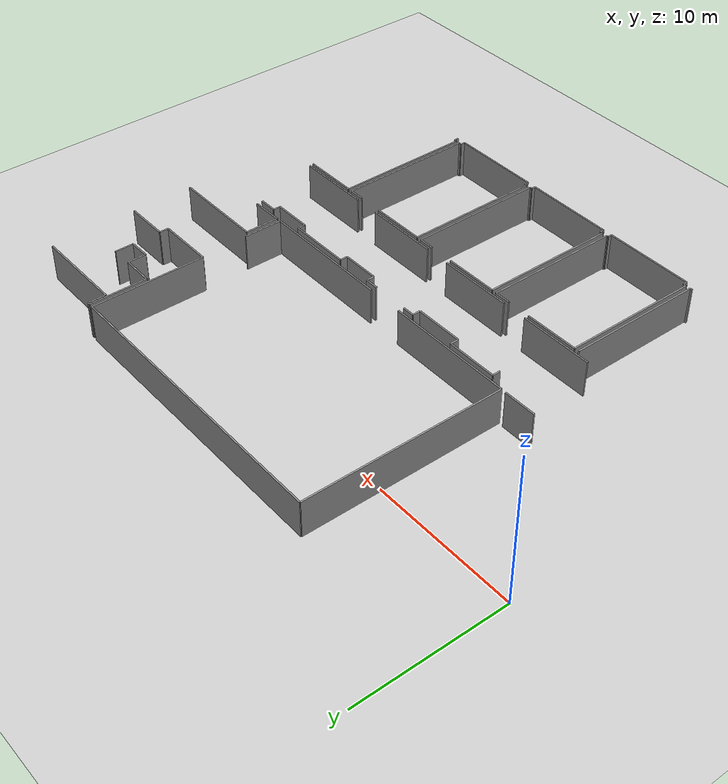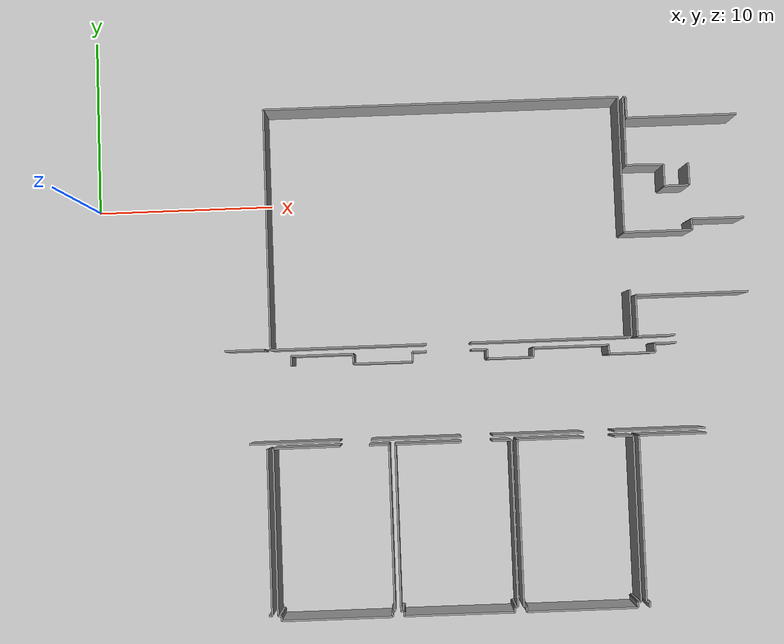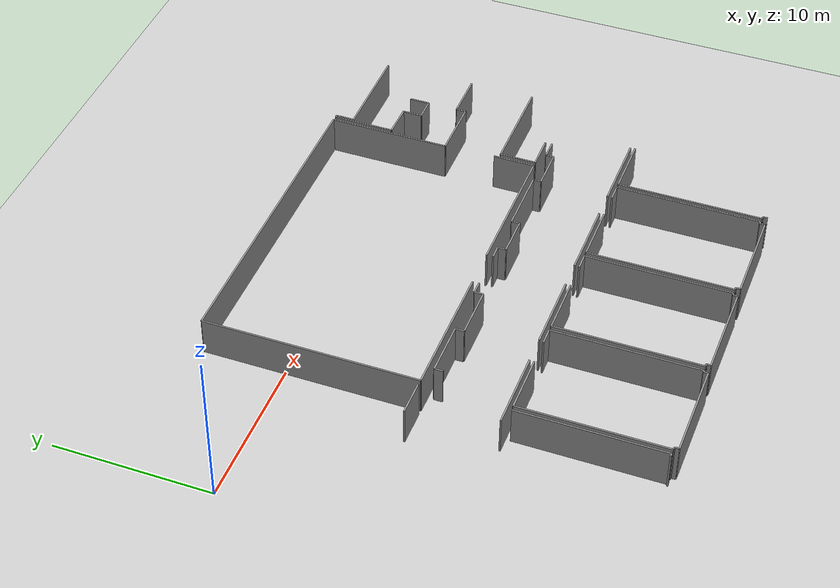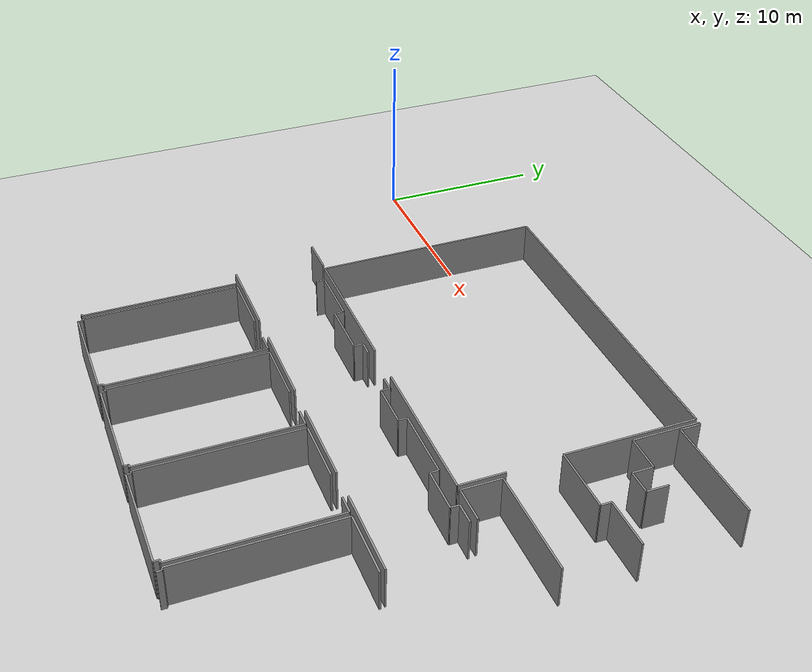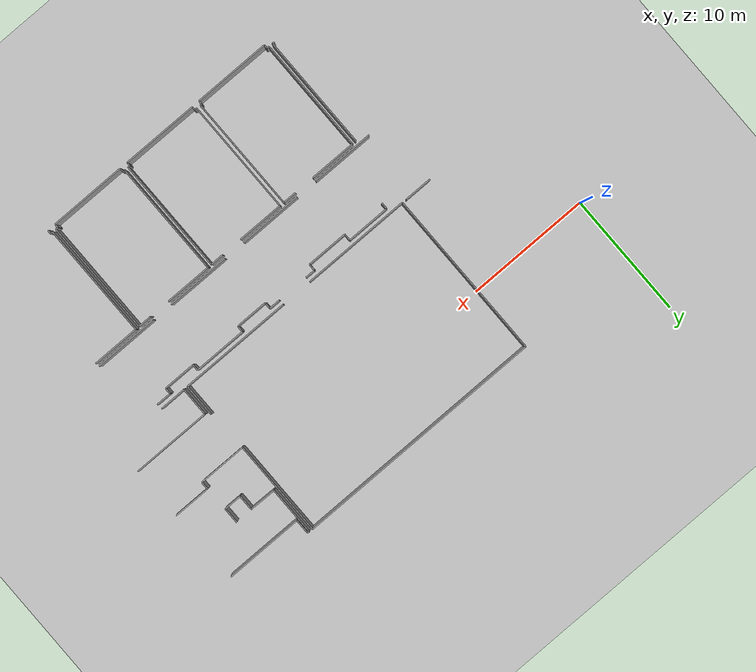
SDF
<sdf version="1.6">
 <world name="default">
  <model name="ground_plane">
   <static>1</static>
   <link name="link">
    <collision name="collision">
     <geometry><plane><normal>0 0 1</normal><size>100 100</size></plane></geometry>
     <surface><friction><ode><mu>100</mu><mu2>50</mu2></ode></friction></surface>
    </collision>
    <visual name="visual">
     <cast_shadows>0</cast_shadows>
     <geometry><plane><normal>0 0 1</normal><size>100 100</size></plane></geometry>
     <material>
      <script><uri>file://media/materials/scripts/gazebo.material</uri><name>Gazebo/Grey</name></script>
     </material>
    </visual>
   </link>
  </model>
  <model name="0510032194_A_40_1_202">
   <static>1</static>
   <link name="Wall_149">
    <collision name="Wall_149_Collision">
     <geometry><box><size>9.18513155639 0.1 2.5</size></box></geometry>
     <pose>4.59256577819 0 1.25 0 0 0</pose>
    </collision>
    <visual name="Wall_149_Visual">
     <pose>4.59256577819 0 1.25 0 0 0</pose>
     <geometry><box><size>9.18513155639 0.1 2.5</size></box></geometry>
     <material>
      <script><uri>file://media/materials/scripts/gazebo.material</uri><name>Gazebo/Grey</name></script>
      <ambient>1 1 1 1</ambient>
     </material>
    </visual>
    <pose>70.4711642883 -37.4038015763 0 0 0 -1.57079632679</pose>
   </link>
   <link name="Wall_150">
    <collision name="Wall_150_Collision">
     <geometry><box><size>0.168930719353 0.1 2.5</size></box></geometry>
     <pose>0.0844653596764 0 1.25 0 0 0</pose>
    </collision>
    <visual name="Wall_150_Visual">
     <pose>0.0844653596764 0 1.25 0 0 0</pose>
     <geometry><box><size>0.168930719353 0.1 2.5</size></box></geometry>
     <material>
      <script><uri>file://media/materials/scripts/gazebo.material</uri><name>Gazebo/Grey</name></script>
      <ambient>1 1 1 1</ambient>
     </material>
    </visual>
    <pose>70.4711642883 -46.5889331326 0 0 0 3.14159265359</pose>
   </link>
   <link name="Wall_153">
    <collision name="Wall_153_Collision">
     <geometry><box><size>9.21053467208 0.1 2.5</size></box></geometry>
     <pose>4.60526733604 0 1.25 0 0 0</pose>
    </collision>
    <visual name="Wall_153_Visual">
     <pose>4.60526733604 0 1.25 0 0 0</pose>
     <geometry><box><size>9.21053467208 0.1 2.5</size></box></geometry>
     <material>
      <script><uri>file://media/materials/scripts/gazebo.material</uri><name>Gazebo/Grey</name></script>
      <ambient>1 1 1 1</ambient>
     </material>
    </visual>
    <pose>70.7968322315 -46.5950298804 0 0 0 1.57079632679</pose>
   </link>
   <link name="Wall_154">
    <collision name="Wall_154_Collision">
     <geometry><box><size>3.73603622484 0.1 2.5</size></box></geometry>
     <pose>1.86801811242 0 1.25 0 0 0</pose>
    </collision>
    <visual name="Wall_154_Visual">
     <pose>1.86801811242 0 1.25 0 0 0</pose>
     <geometry><box><size>3.73603622484 0.1 2.5</size></box></geometry>
     <material>
      <script><uri>file://media/materials/scripts/gazebo.material</uri><name>Gazebo/Grey</name></script>
      <ambient>1 1 1 1</ambient>
     </material>
    </visual>
    <pose>70.7968322315 -37.3844952083 0 0 0 0.0</pose>
   </link>
   <link name="Wall_155">
    <collision name="Wall_155_Collision">
     <geometry><box><size>1.10452747029 0.1 2.5</size></box></geometry>
     <pose>0.552263735147 0 1.25 0 0 0</pose>
    </collision>
    <visual name="Wall_155_Visual">
     <pose>0.552263735147 0 1.25 0 0 0</pose>
     <geometry><box><size>1.10452747029 0.1 2.5</size></box></geometry>
     <material>
      <script><uri>file://media/materials/scripts/gazebo.material</uri><name>Gazebo/Grey</name></script>
      <ambient>1 1 1 1</ambient>
     </material>
    </visual>
    <pose>76.1751798858 -37.3844952083 0 0 0 0.0</pose>
   </link>
   <link name="Wall_156">
    <collision name="Wall_156_Collision">
     <geometry><box><size>9.22069591835 0.1 2.5</size></box></geometry>
     <pose>4.61034795918 0 1.25 0 0 0</pose>
    </collision>
    <visual name="Wall_156_Visual">
     <pose>4.61034795918 0 1.25 0 0 0</pose>
     <geometry><box><size>9.22069591835 0.1 2.5</size></box></geometry>
     <material>
      <script><uri>file://media/materials/scripts/gazebo.material</uri><name>Gazebo/Grey</name></script>
      <ambient>1 1 1 1</ambient>
     </material>
    </visual>
    <pose>77.2797073561 -37.3844952083 0 0 0 -1.57079632679</pose>
   </link>
   <link name="Wall_157">
    <collision name="Wall_157_Collision">
     <geometry><box><size>0.125872438255 0.1 2.5</size></box></geometry>
     <pose>0.0629362191273 0 1.25 0 0 0</pose>
    </collision>
    <visual name="Wall_157_Visual">
     <pose>0.0629362191273 0 1.25 0 0 0</pose>
     <geometry><box><size>0.125872438255 0.1 2.5</size></box></geometry>
     <material>
      <script><uri>file://media/materials/scripts/gazebo.material</uri><name>Gazebo/Grey</name></script>
      <ambient>1 1 1 1</ambient>
     </material>
    </visual>
    <pose>77.2797073561 -46.6051911267 0 0 0 3.14159265359</pose>
   </link>
   <link name="Wall_158">
    <collision name="Wall_158_Collision">
     <geometry><box><size>0.28553102038 0.1 2.5</size></box></geometry>
     <pose>0.14276551019 0 1.25 0 0 0</pose>
    </collision>
    <visual name="Wall_158_Visual">
     <pose>0.14276551019 0 1.25 0 0 0</pose>
     <geometry><box><size>0.28553102038 0.1 2.5</size></box></geometry>
     <material>
      <script><uri>file://media/materials/scripts/gazebo.material</uri><name>Gazebo/Grey</name></script>
      <ambient>1 1 1 1</ambient>
     </material>
    </visual>
    <pose>77.1538349179 -46.6051911267 0 0 0 -1.57079632679</pose>
   </link>
   <link name="Wall_159">
    <collision name="Wall_159_Collision">
     <geometry><box><size>6.17308412877 0.1 2.5</size></box></geometry>
     <pose>3.08654206438 0 1.25 0 0 0</pose>
    </collision>
    <visual name="Wall_159_Visual">
     <pose>3.08654206438 0 1.25 0 0 0</pose>
     <geometry><box><size>6.17308412877 0.1 2.5</size></box></geometry>
     <material>
      <script><uri>file://media/materials/scripts/gazebo.material</uri><name>Gazebo/Grey</name></script>
      <ambient>1 1 1 1</ambient>
     </material>
    </visual>
    <pose>77.1538349179 -46.8907221471 0 0 0 3.14159265359</pose>
   </link>
   <link name="Wall_160">
    <collision name="Wall_160_Collision">
     <geometry><box><size>0.274988727367 0.1 2.5</size></box></geometry>
     <pose>0.137494363684 0 1.25 0 0 0</pose>
    </collision>
    <visual name="Wall_160_Visual">
     <pose>0.137494363684 0 1.25 0 0 0</pose>
     <geometry><box><size>0.274988727367 0.1 2.5</size></box></geometry>
     <material>
      <script><uri>file://media/materials/scripts/gazebo.material</uri><name>Gazebo/Grey</name></script>
      <ambient>1 1 1 1</ambient>
     </material>
    </visual>
    <pose>70.9807507891 -46.8907221471 0 0 0 1.57079632679</pose>
   </link>
   <link name="Wall_161">
    <collision name="Wall_161_Collision">
     <geometry><box><size>0.185080178228 0.1 2.5</size></box></geometry>
     <pose>0.0925400891139 0 1.25 0 0 0</pose>
    </collision>
    <visual name="Wall_161_Visual">
     <pose>0.0925400891139 0 1.25 0 0 0</pose>
     <geometry><box><size>0.185080178228 0.1 2.5</size></box></geometry>
     <material>
      <script><uri>file://media/materials/scripts/gazebo.material</uri><name>Gazebo/Grey</name></script>
      <ambient>1 1 1 1</ambient>
     </material>
    </visual>
    <pose>70.9807507891 -46.6157334197 0 0 0 3.02949549404</pose>
   </link>
   <link name="Wall_162">
    <collision name="Wall_162_Collision">
     <geometry><box><size>0.267240777081 0.1 2.5</size></box></geometry>
     <pose>0.133620388541 0 1.25 0 0 0</pose>
    </collision>
    <visual name="Wall_162_Visual">
     <pose>0.133620388541 0 1.25 0 0 0</pose>
     <geometry><box><size>0.267240777081 0.1 2.5</size></box></geometry>
     <material>
      <script><uri>file://media/materials/scripts/gazebo.material</uri><name>Gazebo/Grey</name></script>
      <ambient>1 1 1 1</ambient>
     </material>
    </visual>
    <pose>77.8036466173 -46.876877449 0 0 0 1.57079632679</pose>
   </link>
   <link name="Wall_163">
    <collision name="Wall_163_Collision">
     <geometry><box><size>0.175281498276 0.1 2.5</size></box></geometry>
     <pose>0.0876407491379 0 1.25 0 0 0</pose>
    </collision>
    <visual name="Wall_163_Visual">
     <pose>0.0876407491379 0 1.25 0 0 0</pose>
     <geometry><box><size>0.175281498276 0.1 2.5</size></box></geometry>
     <material>
      <script><uri>file://media/materials/scripts/gazebo.material</uri><name>Gazebo/Grey</name></script>
      <ambient>1 1 1 1</ambient>
     </material>
    </visual>
    <pose>77.8036466173 -46.6096366719 0 0 0 3.14159265359</pose>
   </link>
   <link name="Wall_164">
    <collision name="Wall_164_Collision">
     <geometry><box><size>9.21459917059 0.1 2.5</size></box></geometry>
     <pose>4.60729958529 0 1.25 0 0 0</pose>
    </collision>
    <visual name="Wall_164_Visual">
     <pose>4.60729958529 0 1.25 0 0 0</pose>
     <geometry><box><size>9.21459917059 0.1 2.5</size></box></geometry>
     <material>
      <script><uri>file://media/materials/scripts/gazebo.material</uri><name>Gazebo/Grey</name></script>
      <ambient>1 1 1 1</ambient>
     </material>
    </visual>
    <pose>77.628365119 -46.6096366719 0 0 0 1.57079632679</pose>
   </link>
   <link name="Wall_165">
    <collision name="Wall_165_Collision">
     <geometry><box><size>3.71965121522 0.1 2.5</size></box></geometry>
     <pose>1.85982560761 0 1.25 0 0 0</pose>
    </collision>
    <visual name="Wall_165_Visual">
     <pose>1.85982560761 0 1.25 0 0 0</pose>
     <geometry><box><size>3.71965121522 0.1 2.5</size></box></geometry>
     <material>
      <script><uri>file://media/materials/scripts/gazebo.material</uri><name>Gazebo/Grey</name></script>
      <ambient>1 1 1 1</ambient>
     </material>
    </visual>
    <pose>77.628365119 -37.3950375013 0 0 0 0.0</pose>
   </link>
   <link name="Wall_166">
    <collision name="Wall_166_Collision">
     <geometry><box><size>1.05867484647 0.1 2.5</size></box></geometry>
     <pose>0.529337423235 0 1.25 0 0 0</pose>
    </collision>
    <visual name="Wall_166_Visual">
     <pose>0.529337423235 0 1.25 0 0 0</pose>
     <geometry><box><size>1.05867484647 0.1 2.5</size></box></geometry>
     <material>
      <script><uri>file://media/materials/scripts/gazebo.material</uri><name>Gazebo/Grey</name></script>
      <ambient>1 1 1 1</ambient>
     </material>
    </visual>
    <pose>83.057137958 -37.3950375013 0 0 0 0.0</pose>
   </link>
   <link name="Wall_167">
    <collision name="Wall_167_Collision">
     <geometry><box><size>9.20316776853 0.1 2.5</size></box></geometry>
     <pose>4.60158388426 0 1.25 0 0 0</pose>
    </collision>
    <visual name="Wall_167_Visual">
     <pose>4.60158388426 0 1.25 0 0 0</pose>
     <geometry><box><size>9.20316776853 0.1 2.5</size></box></geometry>
     <material>
      <script><uri>file://media/materials/scripts/gazebo.material</uri><name>Gazebo/Grey</name></script>
      <ambient>1 1 1 1</ambient>
     </material>
    </visual>
    <pose>84.1158128044 -37.3950375013 0 0 0 -1.57079632679</pose>
   </link>
   <link name="Wall_168">
    <collision name="Wall_168_Collision">
     <geometry><box><size>0.170581921873 0.1 2.5</size></box></geometry>
     <pose>0.0852909609364 0 1.25 0 0 0</pose>
    </collision>
    <visual name="Wall_168_Visual">
     <pose>0.0852909609364 0 1.25 0 0 0</pose>
     <geometry><box><size>0.170581921873 0.1 2.5</size></box></geometry>
     <material>
      <script><uri>file://media/materials/scripts/gazebo.material</uri><name>Gazebo/Grey</name></script>
      <ambient>1 1 1 1</ambient>
     </material>
    </visual>
    <pose>84.1158128044 -46.5982052699 0 0 0 3.14159265359</pose>
   </link>
   <link name="Wall_169">
    <collision name="Wall_169_Collision">
     <geometry><box><size>0.288452378684 0.1 2.5</size></box></geometry>
     <pose>0.144226189342 0 1.25 0 0 0</pose>
    </collision>
    <visual name="Wall_169_Visual">
     <pose>0.144226189342 0 1.25 0 0 0</pose>
     <geometry><box><size>0.288452378684 0.1 2.5</size></box></geometry>
     <material>
      <script><uri>file://media/materials/scripts/gazebo.material</uri><name>Gazebo/Grey</name></script>
      <ambient>1 1 1 1</ambient>
     </material>
    </visual>
    <pose>83.9452308826 -46.5982052699 0 0 0 -1.57079632679</pose>
   </link>
   <link name="Wall_170">
    <collision name="Wall_170_Collision">
     <geometry><box><size>6.14159205257 0.1 2.5</size></box></geometry>
     <pose>3.07079602629 0 1.25 0 0 0</pose>
    </collision>
    <visual name="Wall_170_Visual">
     <pose>3.07079602629 0 1.25 0 0 0</pose>
     <geometry><box><size>6.14159205257 0.1 2.5</size></box></geometry>
     <material>
      <script><uri>file://media/materials/scripts/gazebo.material</uri><name>Gazebo/Grey</name></script>
      <ambient>1 1 1 1</ambient>
     </material>
    </visual>
    <pose>83.9452308826 -46.8866576486 0 0 0 3.14000019945</pose>
   </link>
   <link name="Wall_171">
    <collision name="Wall_171_Collision">
     <geometry><box><size>0.28387981786 0.1 2.5</size></box></geometry>
     <pose>0.14193990893 0 1.25 0 0 0</pose>
    </collision>
    <visual name="Wall_171_Visual">
     <pose>0.14193990893 0 1.25 0 0 0</pose>
     <geometry><box><size>0.28387981786 0.1 2.5</size></box></geometry>
     <material>
      <script><uri>file://media/materials/scripts/gazebo.material</uri><name>Gazebo/Grey</name></script>
      <ambient>1 1 1 1</ambient>
     </material>
    </visual>
    <pose>84.6101574358 -46.8935164898 0 0 0 1.57079632679</pose>
   </link>
   <link name="Wall_172">
    <collision name="Wall_172_Collision">
     <geometry><box><size>0.167025485676 0.1 2.5</size></box></geometry>
     <pose>0.0835127428379 0 1.25 0 0 0</pose>
    </collision>
    <visual name="Wall_172_Visual">
     <pose>0.0835127428379 0 1.25 0 0 0</pose>
     <geometry><box><size>0.167025485676 0.1 2.5</size></box></geometry>
     <material>
      <script><uri>file://media/materials/scripts/gazebo.material</uri><name>Gazebo/Grey</name></script>
      <ambient>1 1 1 1</ambient>
     </material>
    </visual>
    <pose>84.6101574358 -46.6096366719 0 0 0 3.14159265359</pose>
   </link>
   <link name="Wall_173">
    <collision name="Wall_173_Collision">
     <geometry><box><size>9.22006084046 0.1 2.5</size></box></geometry>
     <pose>4.61003042023 0 1.25 0 0 0</pose>
    </collision>
    <visual name="Wall_173_Visual">
     <pose>4.61003042023 0 1.25 0 0 0</pose>
     <geometry><box><size>9.22006084046 0.1 2.5</size></box></geometry>
     <material>
      <script><uri>file://media/materials/scripts/gazebo.material</uri><name>Gazebo/Grey</name></script>
      <ambient>1 1 1 1</ambient>
     </material>
    </visual>
    <pose>84.4431319501 -46.6096366719 0 0 0 1.57079632679</pose>
   </link>
   <link name="Wall_174">
    <collision name="Wall_174_Collision">
     <geometry><box><size>3.74149789472 0.1 2.5</size></box></geometry>
     <pose>1.87074894736 0 1.25 0 0 0</pose>
    </collision>
    <visual name="Wall_174_Visual">
     <pose>1.87074894736 0 1.25 0 0 0</pose>
     <geometry><box><size>3.74149789472 0.1 2.5</size></box></geometry>
     <material>
      <script><uri>file://media/materials/scripts/gazebo.material</uri><name>Gazebo/Grey</name></script>
      <ambient>1 1 1 1</ambient>
     </material>
    </visual>
    <pose>84.4431319501 -37.3895758315 0 0 0 0.0</pose>
   </link>
   <link name="Wall_175">
    <collision name="Wall_175_Collision">
     <geometry><box><size>1.07633001188 0.1 2.5</size></box></geometry>
     <pose>0.538165005938 0 1.25 0 0 0</pose>
    </collision>
    <visual name="Wall_175_Visual">
     <pose>0.538165005938 0 1.25 0 0 0</pose>
     <geometry><box><size>1.07633001188 0.1 2.5</size></box></geometry>
     <material>
      <script><uri>file://media/materials/scripts/gazebo.material</uri><name>Gazebo/Grey</name></script>
      <ambient>1 1 1 1</ambient>
     </material>
    </visual>
    <pose>89.8827011133 -37.3895758315 0 0 0 0.0</pose>
   </link>
   <link name="Wall_176">
    <collision name="Wall_176_Collision">
     <geometry><box><size>9.18195616692 0.1 2.5</size></box></geometry>
     <pose>4.59097808346 0 1.25 0 0 0</pose>
    </collision>
    <visual name="Wall_176_Visual">
     <pose>4.59097808346 0 1.25 0 0 0</pose>
     <geometry><box><size>9.18195616692 0.1 2.5</size></box></geometry>
     <material>
      <script><uri>file://media/materials/scripts/gazebo.material</uri><name>Gazebo/Grey</name></script>
      <ambient>1 1 1 1</ambient>
     </material>
    </visual>
    <pose>90.9590311252 -37.3895758315 0 0 0 -1.57079632679</pose>
   </link>
   <link name="Wall_177">
    <collision name="Wall_177_Collision">
     <geometry><box><size>0.193571741574 0.1 2.5</size></box></geometry>
     <pose>0.0967858707871 0 1.25 0 0 0</pose>
    </collision>
    <visual name="Wall_177_Visual">
     <pose>0.0967858707871 0 1.25 0 0 0</pose>
     <geometry><box><size>0.193571741574 0.1 2.5</size></box></geometry>
     <material>
      <script><uri>file://media/materials/scripts/gazebo.material</uri><name>Gazebo/Grey</name></script>
      <ambient>1 1 1 1</ambient>
     </material>
    </visual>
    <pose>90.9590311252 -46.5715319984 0 0 0 3.14159265359</pose>
   </link>
   <link name="Wall_178">
    <collision name="Wall_178_Collision">
     <geometry><box><size>0.315760728053 0.1 2.5</size></box></geometry>
     <pose>0.157880364027 0 1.25 0 0 0</pose>
    </collision>
    <visual name="Wall_178_Visual">
     <pose>0.157880364027 0 1.25 0 0 0</pose>
     <geometry><box><size>0.315760728053 0.1 2.5</size></box></geometry>
     <material>
      <script><uri>file://media/materials/scripts/gazebo.material</uri><name>Gazebo/Grey</name></script>
      <ambient>1 1 1 1</ambient>
     </material>
    </visual>
    <pose>90.7654593836 -46.5715319984 0 0 0 -1.57079632679</pose>
   </link>
   <link name="Wall_179">
    <collision name="Wall_179_Collision">
     <geometry><box><size>6.15530509428 0.1 2.5</size></box></geometry>
     <pose>3.07765254714 0 1.25 0 0 0</pose>
    </collision>
    <visual name="Wall_179_Visual">
     <pose>3.07765254714 0 1.25 0 0 0</pose>
     <geometry><box><size>6.15530509428 0.1 2.5</size></box></geometry>
     <material>
      <script><uri>file://media/materials/scripts/gazebo.material</uri><name>Gazebo/Grey</name></script>
      <ambient>1 1 1 1</ambient>
     </material>
    </visual>
    <pose>90.7654593836 -46.8872927265 0 0 0 -3.14058153159</pose>
   </link>
   <link name="Wall_180">
    <collision name="Wall_180_Collision">
     <geometry><box><size>0.307250684296 0.1 2.5</size></box></geometry>
     <pose>0.153625342148 0 1.25 0 0 0</pose>
    </collision>
    <visual name="Wall_180_Visual">
     <pose>0.153625342148 0 1.25 0 0 0</pose>
     <geometry><box><size>0.307250684296 0.1 2.5</size></box></geometry>
     <material>
      <script><uri>file://media/materials/scripts/gazebo.material</uri><name>Gazebo/Grey</name></script>
      <ambient>1 1 1 1</ambient>
     </material>
    </visual>
    <pose>91.4362286534 -46.9022805647 0 0 0 1.57079632679</pose>
   </link>
   <link name="Wall_181">
    <collision name="Wall_181_Collision">
     <geometry><box><size>0.172868202285 0.1 2.5</size></box></geometry>
     <pose>0.0864341011425 0 1.25 0 0 0</pose>
    </collision>
    <visual name="Wall_181_Visual">
     <pose>0.0864341011425 0 1.25 0 0 0</pose>
     <geometry><box><size>0.172868202285 0.1 2.5</size></box></geometry>
     <material>
      <script><uri>file://media/materials/scripts/gazebo.material</uri><name>Gazebo/Grey</name></script>
      <ambient>1 1 1 1</ambient>
     </material>
    </visual>
    <pose>91.4362286534 -46.5950298804 0 0 0 3.14159265359</pose>
   </link>
   <link name="Wall_182">
    <collision name="Wall_182_Collision">
     <geometry><box><size>9.20545404894 0.1 2.5</size></box></geometry>
     <pose>4.60272702447 0 1.25 0 0 0</pose>
    </collision>
    <visual name="Wall_182_Visual">
     <pose>4.60272702447 0 1.25 0 0 0</pose>
     <geometry><box><size>9.20545404894 0.1 2.5</size></box></geometry>
     <material>
      <script><uri>file://media/materials/scripts/gazebo.material</uri><name>Gazebo/Grey</name></script>
      <ambient>1 1 1 1</ambient>
     </material>
    </visual>
    <pose>91.2633604512 -46.5950298804 0 0 0 1.57079632679</pose>
   </link>
   <link name="Wall_183">
    <collision name="Wall_183_Collision">
     <geometry><box><size>3.78620737833 0.1 2.5</size></box></geometry>
     <pose>1.89310368917 0 1.25 0 0 0</pose>
    </collision>
    <visual name="Wall_183_Visual">
     <pose>1.89310368917 0 1.25 0 0 0</pose>
     <geometry><box><size>3.78620737833 0.1 2.5</size></box></geometry>
     <material>
      <script><uri>file://media/materials/scripts/gazebo.material</uri><name>Gazebo/Grey</name></script>
      <ambient>1 1 1 1</ambient>
     </material>
    </visual>
    <pose>91.2633604512 -37.3895758315 0 0 0 0.0</pose>
   </link>
   <link name="Wall_250">
    <collision name="Wall_250_Collision">
     <geometry><box><size>2.22937743314 0.1 2.5</size></box></geometry>
     <pose>1.11468871657 0 1.25 0 0 0</pose>
    </collision>
    <visual name="Wall_250_Visual">
     <pose>1.11468871657 0 1.25 0 0 0</pose>
     <geometry><box><size>2.22937743314 0.1 2.5</size></box></geometry>
     <material>
      <script><uri>file://media/materials/scripts/gazebo.material</uri><name>Gazebo/Grey</name></script>
      <ambient>1 1 1 1</ambient>
     </material>
    </visual>
    <pose>70.4627812601 -31.8389950527 0 0 0 3.14159265359</pose>
   </link>
   <link name="Wall_252">
    <collision name="Wall_252_Collision">
     <geometry><box><size>13.6333441297 0.1 2.5</size></box></geometry>
     <pose>6.81667206483 0 1.25 0 0 0</pose>
    </collision>
    <visual name="Wall_252_Visual">
     <pose>6.81667206483 0 1.25 0 0 0</pose>
     <geometry><box><size>13.6333441297 0.1 2.5</size></box></geometry>
     <material>
      <script><uri>file://media/materials/scripts/gazebo.material</uri><name>Gazebo/Grey</name></script>
      <ambient>1 1 1 1</ambient>
     </material>
    </visual>
    <pose>70.8109309607 -31.8626199503 0 0 0 1.57079632679</pose>
   </link>
   <link name="Wall_253">
    <collision name="Wall_253_Collision">
     <geometry><box><size>20.1493703203 0.1 2.5</size></box></geometry>
     <pose>10.0746851601 0 1.25 0 0 0</pose>
    </collision>
    <visual name="Wall_253_Visual">
     <pose>10.0746851601 0 1.25 0 0 0</pose>
     <geometry><box><size>20.1493703203 0.1 2.5</size></box></geometry>
     <material>
      <script><uri>file://media/materials/scripts/gazebo.material</uri><name>Gazebo/Grey</name></script>
      <ambient>1 1 1 1</ambient>
     </material>
    </visual>
    <pose>70.8109309607 -18.2292758207 0 0 0 0.0</pose>
   </link>
   <link name="Wall_254">
    <collision name="Wall_254_Collision">
     <geometry><box><size>7.72711973124 0.1 2.5</size></box></geometry>
     <pose>3.86355986562 0 1.25 0 0 0</pose>
    </collision>
    <visual name="Wall_254_Visual">
     <pose>3.86355986562 0 1.25 0 0 0</pose>
     <geometry><box><size>7.72711973124 0.1 2.5</size></box></geometry>
     <material>
      <script><uri>file://media/materials/scripts/gazebo.material</uri><name>Gazebo/Grey</name></script>
      <ambient>1 1 1 1</ambient>
     </material>
    </visual>
    <pose>90.960301281 -18.2292758207 0 0 0 -1.57079632679</pose>
   </link>
   <link name="Wall_255">
    <collision name="Wall_255_Collision">
     <geometry><box><size>3.84704784042 0.1 2.5</size></box></geometry>
     <pose>1.92352392021 0 1.25 0 0 0</pose>
    </collision>
    <visual name="Wall_255_Visual">
     <pose>1.92352392021 0 1.25 0 0 0</pose>
     <geometry><box><size>3.84704784042 0.1 2.5</size></box></geometry>
     <material>
      <script><uri>file://media/materials/scripts/gazebo.material</uri><name>Gazebo/Grey</name></script>
      <ambient>1 1 1 1</ambient>
     </material>
    </visual>
    <pose>90.960301281 -25.9563955519 0 0 0 0.0</pose>
   </link>
   <link name="Wall_256">
    <collision name="Wall_256_Collision">
     <geometry><box><size>0.61805780479 0.1 2.5</size></box></geometry>
     <pose>0.309028902395 0 1.25 0 0 0</pose>
    </collision>
    <visual name="Wall_256_Visual">
     <pose>0.309028902395 0 1.25 0 0 0</pose>
     <geometry><box><size>0.61805780479 0.1 2.5</size></box></geometry>
     <material>
      <script><uri>file://media/materials/scripts/gazebo.material</uri><name>Gazebo/Grey</name></script>
      <ambient>1 1 1 1</ambient>
     </material>
    </visual>
    <pose>94.8073491214 -25.9563955519 0 0 0 1.57079632679</pose>
   </link>
   <link name="Wall_257">
    <collision name="Wall_257_Collision">
     <geometry><box><size>2.96479763243 0.1 2.5</size></box></geometry>
     <pose>1.48239881621 0 1.25 0 0 0</pose>
    </collision>
    <visual name="Wall_257_Visual">
     <pose>1.48239881621 0 1.25 0 0 0</pose>
     <geometry><box><size>2.96479763243 0.1 2.5</size></box></geometry>
     <material>
      <script><uri>file://media/materials/scripts/gazebo.material</uri><name>Gazebo/Grey</name></script>
      <ambient>1 1 1 1</ambient>
     </material>
    </visual>
    <pose>94.8073491214 -25.3383377471 0 0 0 0.0</pose>
   </link>
   <link name="Wall_260">
    <collision name="Wall_260_Collision">
     <geometry><box><size>2.65030706016 0.1 2.5</size></box></geometry>
     <pose>1.32515353008 0 1.25 0 0 0</pose>
    </collision>
    <visual name="Wall_260_Visual">
     <pose>1.32515353008 0 1.25 0 0 0</pose>
     <geometry><box><size>2.65030706016 0.1 2.5</size></box></geometry>
     <material>
      <script><uri>file://media/materials/scripts/gazebo.material</uri><name>Gazebo/Grey</name></script>
      <ambient>1 1 1 1</ambient>
     </material>
    </visual>
    <pose>91.1242783927 -29.2105346721 0 0 0 -1.57079632679</pose>
   </link>
   <link name="Wall_261">
    <collision name="Wall_261_Collision">
     <geometry><box><size>9.05443252615 0.1 2.5</size></box></geometry>
     <pose>4.52721626307 0 1.25 0 0 0</pose>
    </collision>
    <visual name="Wall_261_Visual">
     <pose>4.52721626307 0 1.25 0 0 0</pose>
     <geometry><box><size>9.05443252615 0.1 2.5</size></box></geometry>
     <material>
      <script><uri>file://media/materials/scripts/gazebo.material</uri><name>Gazebo/Grey</name></script>
      <ambient>1 1 1 1</ambient>
     </material>
    </visual>
    <pose>91.1242783927 -31.8608417322 0 0 0 3.14159265359</pose>
   </link>
   <link name="Wall_262">
    <collision name="Wall_262_Collision">
     <geometry><box><size>8.76178881382 0.1 2.5</size></box></geometry>
     <pose>4.38089440691 0 1.25 0 0 0</pose>
    </collision>
    <visual name="Wall_262_Visual">
     <pose>4.38089440691 0 1.25 0 0 0</pose>
     <geometry><box><size>8.76178881382 0.1 2.5</size></box></geometry>
     <material>
      <script><uri>file://media/materials/scripts/gazebo.material</uri><name>Gazebo/Grey</name></script>
      <ambient>1 1 1 1</ambient>
     </material>
    </visual>
    <pose>79.5727195941 -31.8608417322 0 0 0 -3.1413897021</pose>
   </link>
   <link name="Wall_263">
    <collision name="Wall_263_Collision">
     <geometry><box><size>2.31346174608 0.1 2.5</size></box></geometry>
     <pose>1.15673087304 0 1.25 0 0 0</pose>
    </collision>
    <visual name="Wall_263_Visual">
     <pose>1.15673087304 0 1.25 0 0 0</pose>
     <geometry><box><size>2.31346174608 0.1 2.5</size></box></geometry>
     <material>
      <script><uri>file://media/materials/scripts/gazebo.material</uri><name>Gazebo/Grey</name></script>
      <ambient>1 1 1 1</ambient>
     </material>
    </visual>
    <pose>91.4500733515 -31.8525857196 0 0 0 1.57079632679</pose>
   </link>
   <link name="Wall_264">
    <collision name="Wall_264_Collision">
     <geometry><box><size>6.34709547126 0.1 2.5</size></box></geometry>
     <pose>3.17354773563 0 1.25 0 0 0</pose>
    </collision>
    <visual name="Wall_264_Visual">
     <pose>3.17354773563 0 1.25 0 0 0</pose>
     <geometry><box><size>6.34709547126 0.1 2.5</size></box></geometry>
     <material>
      <script><uri>file://media/materials/scripts/gazebo.material</uri><name>Gazebo/Grey</name></script>
      <ambient>1 1 1 1</ambient>
     </material>
    </visual>
    <pose>91.4500733515 -29.5391239736 0 0 0 0.0</pose>
   </link>
   <link name="Wall_267">
    <collision name="Wall_267_Collision">
     <geometry><box><size>2.11305321299 0.1 2.5</size></box></geometry>
     <pose>1.05652660649 0 1.25 0 0 0</pose>
    </collision>
    <visual name="Wall_267_Visual">
     <pose>1.05652660649 0 1.25 0 0 0</pose>
     <geometry><box><size>2.11305321299 0.1 2.5</size></box></geometry>
     <material>
      <script><uri>file://media/materials/scripts/gazebo.material</uri><name>Gazebo/Grey</name></script>
      <ambient>1 1 1 1</ambient>
     </material>
    </visual>
    <pose>93.5631045148 -31.8429325357 0 0 0 -3.1370242795</pose>
   </link>
   <link name="Wall_285">
    <collision name="Wall_285_Collision">
     <geometry><box><size>3.88439042049 0.1 2.5</size></box></geometry>
     <pose>1.94219521024 0 1.25 0 0 0</pose>
    </collision>
    <visual name="Wall_285_Visual">
     <pose>1.94219521024 0 1.25 0 0 0</pose>
     <geometry><box><size>3.88439042049 0.1 2.5</size></box></geometry>
     <material>
      <script><uri>file://media/materials/scripts/gazebo.material</uri><name>Gazebo/Grey</name></script>
      <ambient>1 1 1 1</ambient>
     </material>
    </visual>
    <pose>91.2537072672 -22.1426257931 0 0 0 1.57079632679</pose>
   </link>
   <link name="Wall_286">
    <collision name="Wall_286_Collision">
     <geometry><box><size>0.148481211221 0.1 2.5</size></box></geometry>
     <pose>0.0742406056103 0 1.25 0 0 0</pose>
    </collision>
    <visual name="Wall_286_Visual">
     <pose>0.0742406056103 0 1.25 0 0 0</pose>
     <geometry><box><size>0.148481211221 0.1 2.5</size></box></geometry>
     <material>
      <script><uri>file://media/materials/scripts/gazebo.material</uri><name>Gazebo/Grey</name></script>
      <ambient>1 1 1 1</ambient>
     </material>
    </visual>
    <pose>91.2537072672 -18.2582353726 0 0 0 0.0</pose>
   </link>
   <link name="Wall_287">
    <collision name="Wall_287_Collision">
     <geometry><box><size>1.18187995758 0.1 2.5</size></box></geometry>
     <pose>0.590939978788 0 1.25 0 0 0</pose>
    </collision>
    <visual name="Wall_287_Visual">
     <pose>0.590939978788 0 1.25 0 0 0</pose>
     <geometry><box><size>1.18187995758 0.1 2.5</size></box></geometry>
     <material>
      <script><uri>file://media/materials/scripts/gazebo.material</uri><name>Gazebo/Grey</name></script>
      <ambient>1 1 1 1</ambient>
     </material>
    </visual>
    <pose>91.4021884784 -18.2582353726 0 0 0 -1.57079632679</pose>
   </link>
   <link name="Wall_288">
    <collision name="Wall_288_Collision">
     <geometry><box><size>6.2383701361 0.1 2.5</size></box></geometry>
     <pose>3.11918506805 0 1.25 0 0 0</pose>
    </collision>
    <visual name="Wall_288_Visual">
     <pose>3.11918506805 0 1.25 0 0 0</pose>
     <geometry><box><size>6.2383701361 0.1 2.5</size></box></geometry>
     <material>
      <script><uri>file://media/materials/scripts/gazebo.material</uri><name>Gazebo/Grey</name></script>
      <ambient>1 1 1 1</ambient>
     </material>
    </visual>
    <pose>91.4021884784 -19.4401153301 0 0 0 0.0</pose>
   </link>
   <link name="Wall_294">
    <collision name="Wall_294_Collision">
     <geometry><box><size>1.27015578461 0.1 2.5</size></box></geometry>
     <pose>0.635077892303 0 1.25 0 0 0</pose>
    </collision>
    <visual name="Wall_294_Visual">
     <pose>0.635077892303 0 1.25 0 0 0</pose>
     <geometry><box><size>1.27015578461 0.1 2.5</size></box></geometry>
     <material>
      <script><uri>file://media/materials/scripts/gazebo.material</uri><name>Gazebo/Grey</name></script>
      <ambient>1 1 1 1</ambient>
     </material>
    </visual>
    <pose>94.7707686348 -22.1350048583 0 0 0 -1.57079632679</pose>
   </link>
   <link name="Wall_295">
    <collision name="Wall_295_Collision">
     <geometry><box><size>1.40263303294 0.1 2.5</size></box></geometry>
     <pose>0.701316516471 0 1.25 0 0 0</pose>
    </collision>
    <visual name="Wall_295_Visual">
     <pose>0.701316516471 0 1.25 0 0 0</pose>
     <geometry><box><size>1.40263303294 0.1 2.5</size></box></geometry>
     <material>
      <script><uri>file://media/materials/scripts/gazebo.material</uri><name>Gazebo/Grey</name></script>
      <ambient>1 1 1 1</ambient>
     </material>
    </visual>
    <pose>94.7707686348 -23.405160643 0 0 0 3.14159265359</pose>
   </link>
   <link name="Wall_296">
    <collision name="Wall_296_Collision">
     <geometry><box><size>1.2259543633 0.1 2.5</size></box></geometry>
     <pose>0.612977181651 0 1.25 0 0 0</pose>
    </collision>
    <visual name="Wall_296_Visual">
     <pose>0.612977181651 0 1.25 0 0 0</pose>
     <geometry><box><size>1.2259543633 0.1 2.5</size></box></geometry>
     <material>
      <script><uri>file://media/materials/scripts/gazebo.material</uri><name>Gazebo/Grey</name></script>
      <ambient>1 1 1 1</ambient>
     </material>
    </visual>
    <pose>93.3681356018 -23.405160643 0 0 0 1.57079632679</pose>
   </link>
   <link name="Wall_297">
    <collision name="Wall_297_Collision">
     <geometry><box><size>2.11474473975 0.1 2.5</size></box></geometry>
     <pose>1.05737236988 0 1.25 0 0 0</pose>
    </collision>
    <visual name="Wall_297_Visual">
     <pose>1.05737236988 0 1.25 0 0 0</pose>
     <geometry><box><size>2.11474473975 0.1 2.5</size></box></geometry>
     <material>
      <script><uri>file://media/materials/scripts/gazebo.material</uri><name>Gazebo/Grey</name></script>
      <ambient>1 1 1 1</ambient>
     </material>
    </visual>
    <pose>93.3681356018 -22.1792062797 0 0 0 3.12429396482</pose>
   </link>
   <link name="Wall_371">
    <collision name="Wall_371_Collision">
     <geometry><box><size>0.540324270772 0.1 2.5</size></box></geometry>
     <pose>0.270162135386 0 1.25 0 0 0</pose>
    </collision>
    <visual name="Wall_371_Visual">
     <pose>0.270162135386 0 1.25 0 0 0</pose>
     <geometry><box><size>0.540324270772 0.1 2.5</size></box></geometry>
     <material>
      <script><uri>file://media/materials/scripts/gazebo.material</uri><name>Gazebo/Grey</name></script>
      <ambient>1 1 1 1</ambient>
     </material>
    </visual>
    <pose>71.9588977588 -32.793771156 0 0 0 1.57079632679</pose>
   </link>
   <link name="Wall_372">
    <collision name="Wall_372_Collision">
     <geometry><box><size>3.48136999003 0.1 2.5</size></box></geometry>
     <pose>1.74068499501 0 1.25 0 0 0</pose>
    </collision>
    <visual name="Wall_372_Visual">
     <pose>1.74068499501 0 1.25 0 0 0</pose>
     <geometry><box><size>3.48136999003 0.1 2.5</size></box></geometry>
     <material>
      <script><uri>file://media/materials/scripts/gazebo.material</uri><name>Gazebo/Grey</name></script>
      <ambient>1 1 1 1</ambient>
     </material>
    </visual>
    <pose>71.9588977588 -32.2534468853 0 0 0 0.0</pose>
   </link>
   <link name="Wall_373">
    <collision name="Wall_373_Collision">
     <geometry><box><size>0.559503623119 0.1 2.5</size></box></geometry>
     <pose>0.27975181156 0 1.25 0 0 0</pose>
    </collision>
    <visual name="Wall_373_Visual">
     <pose>0.27975181156 0 1.25 0 0 0</pose>
     <geometry><box><size>0.559503623119 0.1 2.5</size></box></geometry>
     <material>
      <script><uri>file://media/materials/scripts/gazebo.material</uri><name>Gazebo/Grey</name></script>
      <ambient>1 1 1 1</ambient>
     </material>
    </visual>
    <pose>75.4402677488 -32.2534468853 0 0 0 -1.57079632679</pose>
   </link>
   <link name="Wall_374">
    <collision name="Wall_374_Collision">
     <geometry><box><size>3.32806218683 0.1 2.5</size></box></geometry>
     <pose>1.66403109341 0 1.25 0 0 0</pose>
    </collision>
    <visual name="Wall_374_Visual">
     <pose>1.66403109341 0 1.25 0 0 0</pose>
     <geometry><box><size>3.32806218683 0.1 2.5</size></box></geometry>
     <material>
      <script><uri>file://media/materials/scripts/gazebo.material</uri><name>Gazebo/Grey</name></script>
      <ambient>1 1 1 1</ambient>
     </material>
    </visual>
    <pose>75.4402677488 -32.8129505084 0 0 0 0.0</pose>
   </link>
   <link name="Wall_375">
    <collision name="Wall_375_Collision">
     <geometry><box><size>0.547437143166 0.1 2.5</size></box></geometry>
     <pose>0.273718571583 0 1.25 0 0 0</pose>
    </collision>
    <visual name="Wall_375_Visual">
     <pose>0.273718571583 0 1.25 0 0 0</pose>
     <geometry><box><size>0.547437143166 0.1 2.5</size></box></geometry>
     <material>
      <script><uri>file://media/materials/scripts/gazebo.material</uri><name>Gazebo/Grey</name></script>
      <ambient>1 1 1 1</ambient>
     </material>
    </visual>
    <pose>78.7683299357 -32.8129505084 0 0 0 1.57079632679</pose>
   </link>
   <link name="Wall_376">
    <collision name="Wall_376_Collision">
     <geometry><box><size>0.816329122767 0.1 2.5</size></box></geometry>
     <pose>0.408164561383 0 1.25 0 0 0</pose>
    </collision>
    <visual name="Wall_376_Visual">
     <pose>0.408164561383 0 1.25 0 0 0</pose>
     <geometry><box><size>0.816329122767 0.1 2.5</size></box></geometry>
     <material>
      <script><uri>file://media/materials/scripts/gazebo.material</uri><name>Gazebo/Grey</name></script>
      <ambient>1 1 1 1</ambient>
     </material>
    </visual>
    <pose>78.7683299357 -32.2655133652 0 0 0 0.0</pose>
   </link>
   <link name="Wall_377">
    <collision name="Wall_377_Collision">
     <geometry><box><size>0.889109049225 0.1 2.5</size></box></geometry>
     <pose>0.444554524612 0 1.25 0 0 0</pose>
    </collision>
    <visual name="Wall_377_Visual">
     <pose>0.444554524612 0 1.25 0 0 0</pose>
     <geometry><box><size>0.889109049225 0.1 2.5</size></box></geometry>
     <material>
      <script><uri>file://media/materials/scripts/gazebo.material</uri><name>Gazebo/Grey</name></script>
      <ambient>1 1 1 1</ambient>
     </material>
    </visual>
    <pose>82.090803437 -32.2655133652 0 0 0 0.0</pose>
   </link>
   <link name="Wall_378">
    <collision name="Wall_378_Collision">
     <geometry><box><size>0.526098525984 0.1 2.5</size></box></geometry>
     <pose>0.263049262992 0 1.25 0 0 0</pose>
    </collision>
    <visual name="Wall_378_Visual">
     <pose>0.263049262992 0 1.25 0 0 0</pose>
     <geometry><box><size>0.526098525984 0.1 2.5</size></box></geometry>
     <material>
      <script><uri>file://media/materials/scripts/gazebo.material</uri><name>Gazebo/Grey</name></script>
      <ambient>1 1 1 1</ambient>
     </material>
    </visual>
    <pose>82.9799124863 -32.2655133652 0 0 0 -1.57079632679</pose>
   </link>
   <link name="Wall_379">
    <collision name="Wall_379_Collision">
     <geometry><box><size>2.57841624275 0.1 2.5</size></box></geometry>
     <pose>1.28920812138 0 1.25 0 0 0</pose>
    </collision>
    <visual name="Wall_379_Visual">
     <pose>1.28920812138 0 1.25 0 0 0</pose>
     <geometry><box><size>2.57841624275 0.1 2.5</size></box></geometry>
     <material>
      <script><uri>file://media/materials/scripts/gazebo.material</uri><name>Gazebo/Grey</name></script>
      <ambient>1 1 1 1</ambient>
     </material>
    </visual>
    <pose>82.9799124863 -32.7916118912 0 0 0 0.0</pose>
   </link>
   <link name="Wall_380">
    <collision name="Wall_380_Collision">
     <geometry><box><size>0.516445342021 0.1 2.5</size></box></geometry>
     <pose>0.258222671011 0 1.25 0 0 0</pose>
    </collision>
    <visual name="Wall_380_Visual">
     <pose>0.258222671011 0 1.25 0 0 0</pose>
     <geometry><box><size>0.516445342021 0.1 2.5</size></box></geometry>
     <material>
      <script><uri>file://media/materials/scripts/gazebo.material</uri><name>Gazebo/Grey</name></script>
      <ambient>1 1 1 1</ambient>
     </material>
    </visual>
    <pose>85.558328729 -32.7916118912 0 0 0 1.57079632679</pose>
   </link>
   <link name="Wall_381">
    <collision name="Wall_381_Collision">
     <geometry><box><size>4.24524167889 0.1 2.5</size></box></geometry>
     <pose>2.12262083945 0 1.25 0 0 0</pose>
    </collision>
    <visual name="Wall_381_Visual">
     <pose>2.12262083945 0 1.25 0 0 0</pose>
     <geometry><box><size>4.24524167889 0.1 2.5</size></box></geometry>
     <material>
      <script><uri>file://media/materials/scripts/gazebo.material</uri><name>Gazebo/Grey</name></script>
      <ambient>1 1 1 1</ambient>
     </material>
    </visual>
    <pose>85.558328729 -32.2751665492 0 0 0 0.0</pose>
   </link>
   <link name="Wall_382">
    <collision name="Wall_382_Collision">
     <geometry><box><size>0.499425254507 0.1 2.5</size></box></geometry>
     <pose>0.249712627254 0 1.25 0 0 0</pose>
    </collision>
    <visual name="Wall_382_Visual">
     <pose>0.249712627254 0 1.25 0 0 0</pose>
     <geometry><box><size>0.499425254507 0.1 2.5</size></box></geometry>
     <material>
      <script><uri>file://media/materials/scripts/gazebo.material</uri><name>Gazebo/Grey</name></script>
      <ambient>1 1 1 1</ambient>
     </material>
    </visual>
    <pose>89.8035704079 -32.2751665492 0 0 0 -1.57079632679</pose>
   </link>
   <link name="Wall_383">
    <collision name="Wall_383_Collision">
     <geometry><box><size>2.59315004985 0.1 2.5</size></box></geometry>
     <pose>1.29657502493 0 1.25 0 0 0</pose>
    </collision>
    <visual name="Wall_383_Visual">
     <pose>1.29657502493 0 1.25 0 0 0</pose>
     <geometry><box><size>2.59315004985 0.1 2.5</size></box></geometry>
     <material>
      <script><uri>file://media/materials/scripts/gazebo.material</uri><name>Gazebo/Grey</name></script>
      <ambient>1 1 1 1</ambient>
     </material>
    </visual>
    <pose>89.8035704079 -32.7745918037 0 0 0 0.0</pose>
   </link>
   <link name="Wall_384">
    <collision name="Wall_384_Collision">
     <geometry><box><size>0.499425254507 0.1 2.5</size></box></geometry>
     <pose>0.249712627254 0 1.25 0 0 0</pose>
    </collision>
    <visual name="Wall_384_Visual">
     <pose>0.249712627254 0 1.25 0 0 0</pose>
     <geometry><box><size>0.499425254507 0.1 2.5</size></box></geometry>
     <material>
      <script><uri>file://media/materials/scripts/gazebo.material</uri><name>Gazebo/Grey</name></script>
      <ambient>1 1 1 1</ambient>
     </material>
    </visual>
    <pose>92.3967204578 -32.7745918037 0 0 0 1.57079632679</pose>
   </link>
   <link name="Wall_385">
    <collision name="Wall_385_Collision">
     <geometry><box><size>1.21973059996 0.1 2.5</size></box></geometry>
     <pose>0.609865299979 0 1.25 0 0 0</pose>
    </collision>
    <visual name="Wall_385_Visual">
     <pose>0.609865299979 0 1.25 0 0 0</pose>
     <geometry><box><size>1.21973059996 0.1 2.5</size></box></geometry>
     <material>
      <script><uri>file://media/materials/scripts/gazebo.material</uri><name>Gazebo/Grey</name></script>
      <ambient>1 1 1 1</ambient>
     </material>
    </visual>
    <pose>92.3967204578 -32.2751665492 0 0 0 0.0</pose>
   </link>
   <link name="Wall_424">
    <collision name="Wall_424_Collision">
     <geometry><box><size>5.0907843847 0.1 2.5</size></box></geometry>
     <pose>2.54539219235 0 1.25 0 0 0</pose>
    </collision>
    <visual name="Wall_424_Visual">
     <pose>2.54539219235 0 1.25 0 0 0</pose>
     <geometry><box><size>5.0907843847 0.1 2.5</size></box></geometry>
     <material>
      <script><uri>file://media/materials/scripts/gazebo.material</uri><name>Gazebo/Grey</name></script>
      <ambient>1 1 1 1</ambient>
     </material>
    </visual>
    <pose>94.9955862086 -37.0964238764 0 0 0 3.14159265359</pose>
   </link>
   <link name="Wall_425">
    <collision name="Wall_425_Collision">
     <geometry><box><size>5.06804859616 0.1 2.5</size></box></geometry>
     <pose>2.53402429808 0 1.25 0 0 0</pose>
    </collision>
    <visual name="Wall_425_Visual">
     <pose>2.53402429808 0 1.25 0 0 0</pose>
     <geometry><box><size>5.06804859616 0.1 2.5</size></box></geometry>
     <material>
      <script><uri>file://media/materials/scripts/gazebo.material</uri><name>Gazebo/Grey</name></script>
      <ambient>1 1 1 1</ambient>
     </material>
    </visual>
    <pose>88.1665936327 -37.0964238764 0 0 0 3.14159265359</pose>
   </link>
   <link name="Wall_426">
    <collision name="Wall_426_Collision">
     <geometry><box><size>5.04251846489 0.1 2.5</size></box></geometry>
     <pose>2.52125923244 0 1.25 0 0 0</pose>
    </collision>
    <visual name="Wall_426_Visual">
     <pose>2.52125923244 0 1.25 0 0 0</pose>
     <geometry><box><size>5.04251846489 0.1 2.5</size></box></geometry>
     <material>
      <script><uri>file://media/materials/scripts/gazebo.material</uri><name>Gazebo/Grey</name></script>
      <ambient>1 1 1 1</ambient>
     </material>
    </visual>
    <pose>81.3287099663 -37.0964238764 0 0 0 3.14159265359</pose>
   </link>
   <link name="Wall_427">
    <collision name="Wall_427_Collision">
     <geometry><box><size>5.06030064587 0.1 2.5</size></box></geometry>
     <pose>2.53015032294 0 1.25 0 0 0</pose>
    </collision>
    <visual name="Wall_427_Visual">
     <pose>2.53015032294 0 1.25 0 0 0</pose>
     <geometry><box><size>5.06030064587 0.1 2.5</size></box></geometry>
     <material>
      <script><uri>file://media/materials/scripts/gazebo.material</uri><name>Gazebo/Grey</name></script>
      <ambient>1 1 1 1</ambient>
     </material>
    </visual>
    <pose>74.5384571418 -37.0964238764 0 0 0 3.14159265359</pose>
   </link>
   <pose>-60.9 23.465744216 0 0 0 0</pose>
  </model>
 </world>
</sdf>
